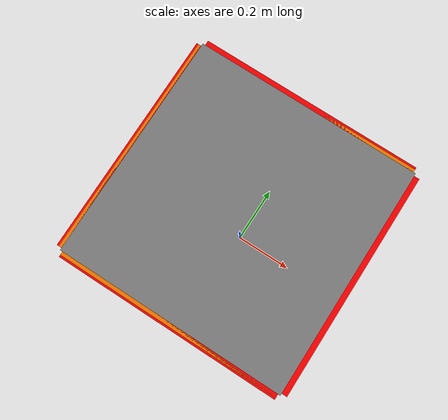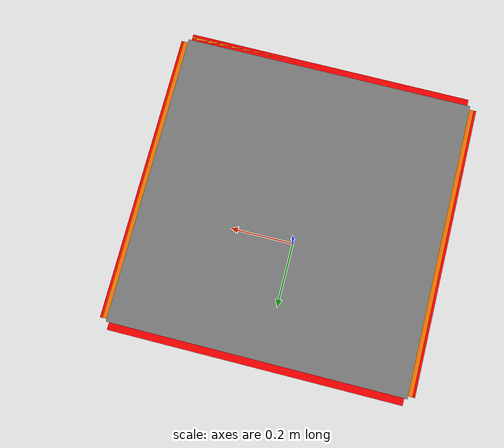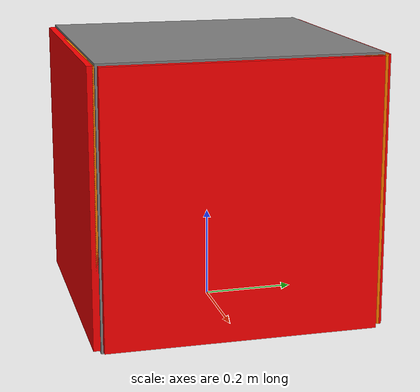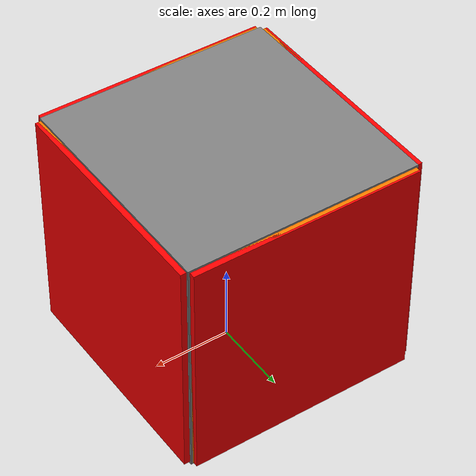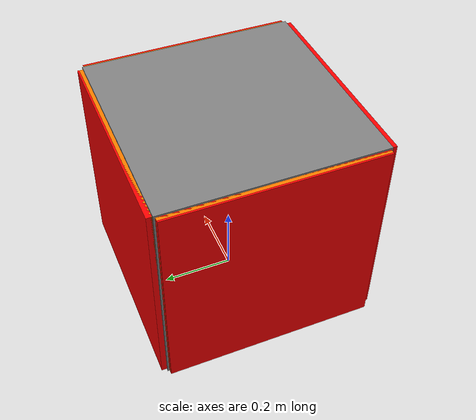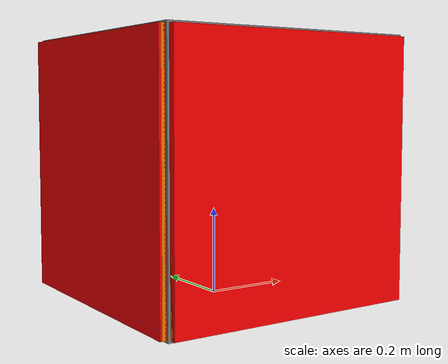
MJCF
<mujoco model="square">
  <worldbody>
    <body name="square_body" pos="0 0 0.3">
      <camera name="floating" pos="-2 0 1" xyaxes="0 -1 0 .5 0 1" mode="trackcom" fovy="90"/>
      <camera name="egocentric" pos=".25 0 .11" xyaxes="0 -1 0 0 0 1" fovy="90" />

      <geom name="square_geom" type="box" size="0.3 0.3 0.3" density="100" friction="0 0.005 0.0001"/>
      <geom name="right_geom" type="box" pos="0.3 0 0" size="0.01 0.295 0.295" rgba="1 1 0 0.5"/>
      <site name="right" type="box" pos="0.3 0 0" size="0.015 0.295 0.295" rgba="1 0 0 1"/>
      <geom name="left_geom" type="box" pos="-0.3 0 0" size="0.01 0.295 0.295" rgba="1 1 0 0.5"/>
      <site name="left" type="box" pos="-0.3 0 0" size="0.015 0.295 0.295" rgba="1 0 0 1"/>
      <geom name="upper_geom" type="box" pos="0 0.3 0" size="0.295 0.01 0.295" rgba="1 1 0 0.5"/>
      <site name="upper" type="box" pos="0 0.3 0" size="0.295 0.015 0.295" rgba="1 0 0 1"/>
      <geom name="lower_geom" type="box" pos="0 -0.3 0" size="0.295 0.01 0.295" rgba="1 1 0 0.5"/>
      <site name="lower" type="box" pos="0 -0.3 0" size="0.295 0.015 0.295" rgba="1 0 0 1"/>
      <body name="test">
        <joint name="forward_backward" type="slide" axis="1 0 0"/>
        <joint name="left_right" type="slide" axis="0 1 0"/>
      </body>
    </body>
  </worldbody>

  <actuator>
    <motor name="forward_backward" joint="forward_backward" ctrlrange="-1 1" ctrllimited="True"/>
    <motor name="left_right" joint="left_right" ctrlrange="-1 1" ctrllimited="True"/>
  </actuator>

  <sensor>
    <touch name="right" site="right"/>
    <touch name="left" site="left"/>
    <touch name="upper" site="upper"/>
    <touch name="lower" site="lower"/>
  </sensor>
</mujoco>
